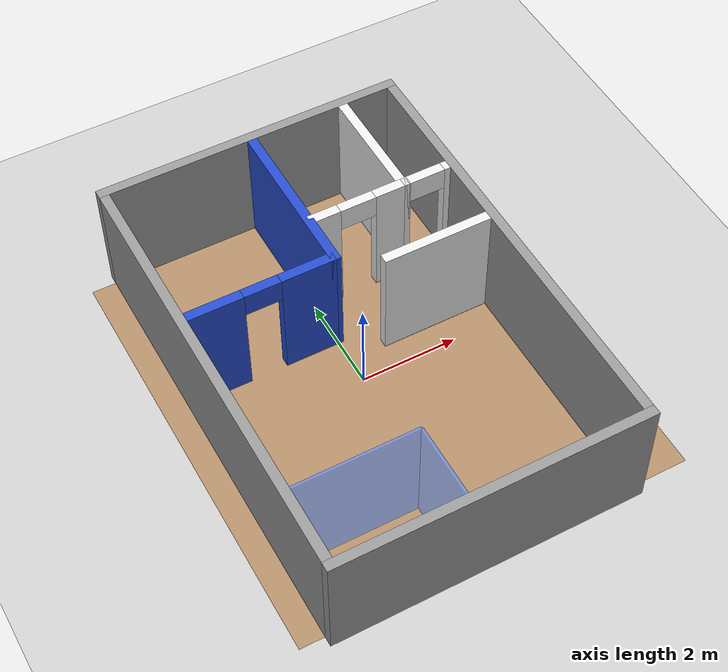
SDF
<sdf version="1.4">
 <world name="isr-empty-testbed">
  <include>
   <uri>model://ground_plane</uri>
   <material>
    <script><uri>file://media/materials/scripts/gazebo.material</uri><name>Gazebo/Orange</name></script>
   </material>
  </include>
  <include><uri>model://sun</uri></include>
  <include><uri>model://isr-empty-testbed/outside_wall</uri></include>
  <include><uri>model://isr-empty-testbed/bedroom</uri></include>
  <include><uri>model://isr-empty-testbed/bathroom</uri></include>
  <include><uri>model://isr-empty-testbed/floor</uri></include>
  <include><uri>model://isr-empty-testbed/inside_hallway</uri></include>
  <include><uri>model://isr-empty-testbed/outside_hallway</uri></include>
  <include><uri>model://isr-empty-testbed/patio</uri></include>
 </world>
</sdf>

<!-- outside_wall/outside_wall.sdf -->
<sdf version='1.4'>
  <model name='model'>
    <link name='Wall_North'>
      <collision name='Wall_North_Collision'>
        <geometry>
          <box>
            <size>6.4 0.2 2.5</size>
          </box>
        </geometry>
        <pose>0 0 1.25 0 -0 0</pose>
      </collision>
      <visual name='Wall_North_Visual'>
        <pose>0 0 1.25 0 0 0</pose>
        <geometry>
          <box>
            <size>6.4 0.2 2.5</size>
          </box>
        </geometry>
        <material>
          <script>
            <uri>file://media/materials/scripts/gazebo.material</uri>
            <name>Gazebo/Grey</name>
          </script>
        </material>
      </visual>
      <velocity_decay>
        <linear>0</linear>
        <angular>0</angular>
      </velocity_decay>
      <pose>0 4.6 0 0 0 0 </pose>
    </link>
    <link name='Wall_South'>
      <collision name='Wall_South_Collision'>
        <geometry>
          <box>
            <size>6.4 0.2 2.5</size>
          </box>
        </geometry>
        <pose>0 0 1.25 0 -0 0</pose>
      </collision>
      <visual name='Wall_South_Visual'>
        <pose>0 0 1.25 0 0 0</pose>
        <geometry>
          <box>
            <size>6.4 0.2 2.5</size>
          </box>
        </geometry>
        <material>
          <script>
            <uri>file://media/materials/scripts/gazebo.material</uri>
            <name>Gazebo/Grey</name>
          </script>
        </material>
      </visual>
      <velocity_decay>
        <linear>0</linear>
        <angular>0</angular>
      </velocity_decay>
      <pose>0 -4.6 0 0 0 0 </pose>
    </link>
    <link name='Wall_East'>
      <collision name='Wall_East_Collision'>
        <geometry>
          <box>
            <size>9 0.2 2.5</size>
          </box>
        </geometry>
        <pose>0 0 1.25 0 -0 0</pose>
      </collision>
      <visual name='Wall_East_Visual'>
        <pose>0 0 1.25 0 -0 0</pose>
        <geometry>
          <box>
            <size>9 0.2 2.5</size>
          </box>
        </geometry>
        <material>
          <script>
            <uri>file://media/materials/scripts/gazebo.material</uri>
            <name>Gazebo/Grey</name>
          </script>
        </material>
      </visual>
      <velocity_decay>
        <linear>0</linear>
        <angular>0</angular>
      </velocity_decay>
      <pose>3.1 0 0 0 0 1.57079632679</pose>
    </link>
    <link name='Wall_West'>
      <collision name='Wall_West_Collision'>
        <geometry>
          <box>
            <size>9 0.2 2.5</size>
          </box>
        </geometry>
        <pose>0 0 1.25 0 -0 0</pose>
      </collision>
      <visual name='Wall_West_Visual'>
        <pose>0 0 1.25 0 -0 0</pose>
        <geometry>
          <box>
            <size>9 0.2 2.5</size>
          </box>
        </geometry>
        <material>
          <script>
            <uri>file://media/materials/scripts/gazebo.material</uri>
            <name>Gazebo/Grey</name>
          </script>
        </material>
      </visual>
      <velocity_decay>
        <linear>0</linear>
        <angular>0</angular>
      </velocity_decay>
      <pose>-3.1 0 0 0 0 1.57079632679</pose>
    </link>
    <static>1</static>
  </model>
</sdf>

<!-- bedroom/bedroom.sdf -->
<sdf version='1.4'>
  <model name='bedroom'>
    <link name='Wall_South'>
      <pose>-1.5 1.1 0 0 0 0</pose>
      <visual name='Wall_South_Visual_0'>
        <pose>-0.9375 0 1.25 0 -0 0</pose>
        <geometry>
          <box>
            <size>1.125 0.2 2.5</size>
          </box>
        </geometry>
        <material>
          <script>
            <uri>file://media/materials/scripts/gazebo.material</uri>
            <name>Gazebo/Blue</name>
          </script>
        </material>
      </visual>
      <collision name='Wall_South_Collision_0'>
        <geometry>
          <box>
            <size>1.125 0.2 2.5</size>
          </box>
        </geometry>
        <pose>-0.9375 0 1.25 0 -0 0</pose>
      </collision>
      <visual name='Wall_South_Visual_1'>
        <pose>0.9375 0 1.25 0 -0 0</pose>
        <geometry>
          <box>
            <size>1.125 0.2 2.5</size>
          </box>
        </geometry>
        <material>
          <script>
            <uri>file://media/materials/scripts/gazebo.material</uri>
            <name>Gazebo/Blue</name>
          </script>
        </material>
      </visual>
      <collision name='Wall_South_Collision_1'>
        <geometry>
          <box>
            <size>1.125 0.2 2.5</size>
          </box>
        </geometry>
        <pose>0.9375 0 1.25 0 -0 0</pose>
      </collision>
      <visual name='Wall_South_Visual_2'>
        <pose>0 0 2.25 0 -0 0</pose>
        <geometry>
          <box>
            <size>0.75 0.2 0.5</size>
          </box>
        </geometry>
        <material>
          <script>
            <uri>file://media/materials/scripts/gazebo.material</uri>
            <name>Gazebo/Blue</name>
          </script>
        </material>
      </visual>
      <collision name='Wall_South_Collision_2'>
        <geometry>
          <box>
            <size>0.75 0.2 0.5</size>
          </box>
        </geometry>
        <pose>0 0 2.25 0 -0 0</pose>
      </collision>
    </link>
    <link name='Wall_East'>
      <collision name='Wall_East_Collision'>
        <geometry>
          <box>
            <size>3.5 0.2 2.5</size>
          </box>
        </geometry>
        <pose>0 0 1.25 0 -0 0</pose>
      </collision>
      <visual name='Wall_East_Visual'>
        <pose>0 0 1.25 0 -0 0</pose>
        <geometry>
          <box>
            <size>3.5 0.2 2.5</size>
          </box>
        </geometry>
        <material>
          <script>
            <uri>file://media/materials/scripts/gazebo.material</uri>
            <name>Gazebo/Blue</name>
          </script>
        </material>
      </visual>
      <velocity_decay>
        <linear>0</linear>
        <angular>0</angular>
      </velocity_decay>
      <pose>0 2.75 0 0 0 1.5708</pose>
    </link>
    <static>1</static>
  </model>
</sdf>

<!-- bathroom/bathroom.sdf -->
<sdf version='1.4'>
  <model name='bathroom'>
    <link name='Wall_South'>
      <pose>1.0 2.1 0 0 0 0</pose>
      <visual name='Wall_South_Visual_0'>
        <pose>-0.6875 0 1.25 0 -0 0</pose>
        <geometry>
          <box>
            <size>0.625 0.2 2.5</size>
          </box>
        </geometry>
        <material>
          <script>
            <uri>file://media/materials/scripts/gazebo.material</uri>
            <name>Gazebo/White</name>
          </script>
        </material>
      </visual>
      <collision name='Wall_South_Collision_0'>
        <geometry>
          <box>
            <size>0.625 0.2 2.5</size>
          </box>
        </geometry>
        <pose>-0.6875 0 1.25 0 -0 0</pose>
      </collision>
      <visual name='Wall_South_Visual_1'>
        <pose>0.6875 0 1.25 0 -0 0</pose>
        <geometry>
          <box>
            <size>0.625 0.2 2.5</size>
          </box>
        </geometry>
        <material>
          <script>
            <uri>file://media/materials/scripts/gazebo.material</uri>
            <name>Gazebo/White</name>
          </script>
        </material>
      </visual>
      <collision name='Wall_South_Collision_1'>
        <geometry>
          <box>
            <size>0.625 0.2 2.5</size>
          </box>
        </geometry>
        <pose>0.6875 0 1.25 0 -0 0</pose>
      </collision>
      <visual name='Wall_South_Visual_2'>
        <pose>0 0 2.25 0 -0 0</pose>
        <geometry>
          <box>
            <size>0.75 0.2 0.5</size>
          </box>
        </geometry>
        <material>
          <script>
            <uri>file://media/materials/scripts/gazebo.material</uri>
            <name>Gazebo/White</name>
          </script>
        </material>
      </visual>
      <collision name='Wall_South_Collision_2'>
        <geometry>
          <box>
            <size>0.75 0.2 0.5</size>
          </box>
        </geometry>
        <pose>0 0 2.25 0 -0 0</pose>
      </collision>
    </link>
    <link name='Wall_East'>
      <collision name='Wall_East_Collision'>
        <geometry>
          <box>
            <size>2.5 0.2 2.5</size>
          </box>
        </geometry>
        <pose>0 0 1.25 0 -0 0</pose>
      </collision>
      <visual name='Wall_East_Visual'>
        <pose>0 0 1.25 0 -0 0</pose>
        <geometry>
          <box>
            <size>2.5 0.2 2.5</size>
          </box>
        </geometry>
        <material>
          <script>
            <uri>file://media/materials/scripts/gazebo.material</uri>
            <name>Gazebo/White</name>
          </script>
        </material>
      </visual>
      <velocity_decay>
        <linear>0</linear>
        <angular>0</angular>
      </velocity_decay>
      <pose>2.0 3.25 0 0 0 1.5708</pose>
    </link>
    <static>1</static>
  </model>
</sdf>

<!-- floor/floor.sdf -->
<sdf version='1.4'>
  <model name='floor'>
    <link name='Floor'>
      <pose>0.3 0 0.01 0 0 0</pose>
      <visual name='Floor'>
        <pose>0 0 0 0 0 0</pose>
        <transparency>0.3</transparency>
        <geometry>
          <box>
            <size>8.0 9.0 0.01</size>
          </box>
        </geometry>
        <material>
          <script>
            <uri>file://media/materials/scripts/gazebo.material</uri>
            <name>Gazebo/WoodFloor</name>
          </script>
        </material>
      </visual>
      <velocity_decay>
        <linear>0</linear>
        <angular>0</angular>
      </velocity_decay>
    </link>
    <static>1</static>
  </model>
</sdf>

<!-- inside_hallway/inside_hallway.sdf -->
<sdf version='1.4'>
  <model name='inside_hallway'>
    <link name='Wall'>
      <collision name='Wall'>
        <geometry>
          <box>
            <size>2.25 0.2 2.5</size>
          </box>
        </geometry>
        <pose>0 0 1.25 0 -0 0</pose>
      </collision>
      <visual name='Wall'>
        <pose>0 0 1.25 0 0 0</pose>
        <geometry>
          <box>
            <size>2.25 0.2 2.5</size>
          </box>
        </geometry>
        <material>
          <script>
            <uri>file://media/materials/scripts/gazebo.material</uri>
            <name>Gazebo/White</name>
          </script>
        </material>
      </visual>
      <velocity_decay>
        <linear>0</linear>
        <angular>0</angular>
      </velocity_decay>
      <pose>1.875 0.6 0 0 0 0 </pose>
    </link>
    <static>1</static>
  </model>
</sdf>

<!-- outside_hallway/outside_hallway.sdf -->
<sdf version='1.4'>
  <model name='outside_hallway'>
    <link name='Wall_South'>
      <visual name='Wall_South_Visual_0'>
        <pose>-0.4375 0 1.25 0 -0 0</pose>
        <geometry>
          <box>
            <size>0.125 0.2 2.5</size>
          </box>
        </geometry>
        <material>
          <script>
            <uri>file://media/materials/scripts/gazebo.material</uri>
            <name>Gazebo/White</name>
          </script>
        </material>
      </visual>
      <collision name='Wall_South_Collision_0'>
        <geometry>
          <box>
            <size>0.125 0.2 2.5</size>
          </box>
        </geometry>
        <pose>-0.4375 0 1.25 0 -0 0</pose>
      </collision>
      <visual name='Wall_South_Visual_1'>
        <pose>0.4375 0 1.25 0 -0 0</pose>
        <geometry>
          <box>
            <size>0.125 0.2 2.5</size>
          </box>
        </geometry>
        <material>
          <script>
            <uri>file://media/materials/scripts/gazebo.material</uri>
            <name>Gazebo/White</name>
          </script>
        </material>
      </visual>
      <collision name='Wall_South_Collision_1'>
        <geometry>
          <box>
            <size>0.125 0.2 2.5</size>
          </box>
        </geometry>
        <pose>0.4375 0 1.25 0 -0 0</pose>
      </collision>
      <visual name='Wall_South_Visual_2'>
        <pose>0 0 2.25 0 -0 0</pose>
        <geometry>
          <box>
            <size>0.75 0.2 0.5</size>
          </box>
        </geometry>
        <material>
          <script>
            <uri>file://media/materials/scripts/gazebo.material</uri>
            <name>Gazebo/White</name>
          </script>
        </material>
      </visual>
      <collision name='Wall_South_Collision_2'>
        <geometry>
          <box>
            <size>0.75 0.2 0.5</size>
          </box>
        </geometry>
        <pose>0 0 2.25 0 -0 0</pose>
      </collision>
    </link>
    <pose>2.5 2.1 0 0 -0 0</pose>
    <static>1</static>
  </model>
</sdf>

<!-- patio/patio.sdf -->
<sdf version='1.4'>
  <model name='patio'>
    <link name='Wall_North'>
      <collision name='Wall_North_Collision'>
        <geometry>
          <box>
            <size>2.5 0.05 2.5</size>
          </box>
        </geometry>
        <pose>0 0 1.25 0 -0 0</pose>
      </collision>
      <visual name='Wall_North_Visual'>
        <pose>0 0 1.25 0 0 0</pose>
        <geometry>
          <box>
            <size>2.5 0.05 2.5</size>
          </box>
        </geometry>
        <material>
          <script>
            <uri>file://media/materials/scripts/gazebo.material</uri>
            <name>Gazebo/BlueTransparent</name>
          </script>
        </material>
      </visual>
      <velocity_decay>
        <linear>0</linear>
        <angular>0</angular>
      </velocity_decay>
      <pose>-1.75 -3 0 0 0 0 </pose>
    </link>
    <link name='Wall_East'>
      <collision name='Wall_East_Collision'>
        <geometry>
          <box>
            <size>1.5 0.05 2.5</size>
          </box>
        </geometry>
        <pose>0 0 1.25 0 -0 0</pose>
      </collision>
      <visual name='Wall_East_Visual'>
        <pose>0 0 1.25 0 -0 0</pose>
        <geometry>
          <box>
            <size>1.5 0.05 2.5</size>
          </box>
        </geometry>
        <material>
          <script>
            <uri>file://media/materials/scripts/gazebo.material</uri>
            <name>Gazebo/BlueTransparent</name>
          </script>
        </material>
      </visual>
      <velocity_decay>
        <linear>0</linear>
        <angular>0</angular>
      </velocity_decay>
      <pose>-0.5 -3.75 0 0 0 1.57079632679</pose>
    </link>
    <static>1</static>
  </model>
</sdf>
